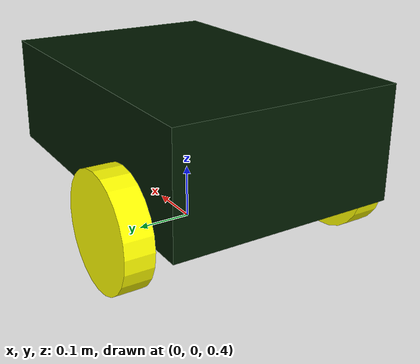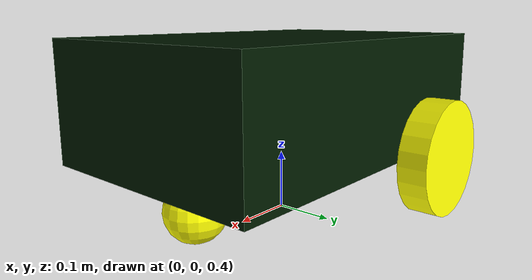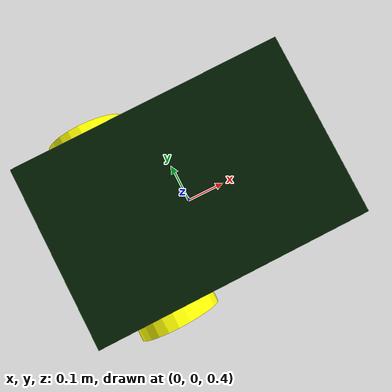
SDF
<?xml version="1.0" ?>
<!--USE THIS FILE, IF IT IS REQUIRED. URDF/XACRO FILE IS SUFFICIENT IN ORDER TO VISULAIZE IN GAZEBO-->
<!--CHECK THE PLACEMNET OF CAMERA AND LIDAR. THESE TWO ARE MISPLACED-->
<!--COLOR OF base_link IS MORE DARKER COMPARED TO IN RVIZ. ADJUST THE MATERIAL VALUES OF 'base_link'-->
<!--THE ROBOT IS SLIDING, WHEN APPLYING BRAKE. TRY TO MODIFY THAT AS WELL-->
<sdf version="1.8">
    <model name ="dd_robot">

      <pose>0 0 0.5 0 0 0</pose>
      <link name ="base_footprint"/>

      <link name ="base_link">
        <inertial>
            <pose>0.0 0.0 0.10 0.0 0.0 0.0</pose>
            <inertia>
                <ixx>0.0833333</ixx>
                <ixy>0.0</ixy>
                <ixz>0.0</ixz>
                <iyy>0.1666667</iyy>
                <iyz>0.0</iyz>
                <izz>0.2166667</izz>
            </inertia>
            <mass>5.0</mass>
        </inertial>

        <collision name ="base_collision">
            <pose>0.0 0.0 0.105 0.0 0.0 0.0</pose>
            <geometry>
                <box>
                    <size>0.60 0.40 0.20</size>
                </box>
            </geometry>
            <surface>
                <friction>
                    <ode>
                        <mu>1.0</mu>
                        <mu2>1.0</mu2>
                    </ode>
                </friction>
                <contact>
                    <ode>
                        <soft_cfm>1e-9</soft_cfm>
                        <soft_erp>0.2</soft_erp>
                        <kp>2e6</kp>
                        <kd>50</kd>
                        <max_vel>0.2</max_vel>
                        <min_depth>0.001</min_depth>
                    </ode>
                </contact>
                <bullet>
                    <split_impulse>1</split_impulse>
                    <split_impulse_penetration_threshold>-0.01</split_impulse_penetration_threshold>
                    <soft_cfm>0.0</soft_cfm>
                    <soft_erp>0.2</soft_erp>
                    <kp>2e6</kp>
                    <kd>50</kd>
                </bullet>
            </surface>
        </collision>
        <visual name ="base_visual">
            <pose>0.0 0.0 0.105 0.0 0.0 0.0</pose>
            <geometry>
                <box>
                    <size>0.60 0.40 0.20</size>
                </box>
            </geometry>
            <material>
                <ambient>0.0 0.6 0.0 1.0</ambient>
                <diffuse> 0.0 0.1 0.0 1.0</diffuse>
            </material>
        </visual>
      </link>

      <link name="right_wheel_link">
        <pose>-0.15 -0.225 0 0.0 0.0 0.0</pose>
        <inertial>
            <pose>0.0 0.0 0.0 0.0 0.0 0.0</pose>
            <inertia>
                <ixx>0.002708</ixx>
                <ixy>0.0</ixy>
                <ixz>0.0</ixz>
                <iyy>0.002708</iyy>
                <iyz>0.0</iyz>
                <izz>0.005000</izz>
            </inertia>
            <mass>1.0</mass>
        </inertial>
        <collision name ="right_wheel_collision">
            <pose>0.0 0.0 0.0 1.5708 0.0 0.0</pose>
            <geometry>
                <cylinder>
                    <radius>0.1</radius>
                    <length>0.05</length>
                </cylinder>
            </geometry>
            <surface>
                <friction>
                    <ode>
                        <mu>0.1</mu>
                        <mu2>3.0</mu2>
                        <fdir1>0 0 0</fdir1>
                        <slip1>0.0</slip1>
                        <slip2>0.0</slip2>
                    </ode>
                </friction>
                <contact>
                    <ode>
                        <soft_cfm>0</soft_cfm>
                        <soft_erp>0.2</soft_erp>
                        <kp>1e+5</kp>
                        <kd>1</kd>
                        <max_vel>0.01</max_vel>
                        <min_depth>0.001</min_depth>
                    </ode>
                </contact>
                <bullet>
                    <split_impulse>1</split_impulse>
                    <split_impulse_penetration_threshold>-0.01</split_impulse_penetration_threshold>
                    <soft_cfm>0.0</soft_cfm>
                    <soft_erp>0.2</soft_erp>
                    <kp>2e6</kp>
                    <kd>50</kd>
                </bullet>
            </surface>
        </collision>
        <visual name ="right_wheel_visual">
            <pose>0.0 0.0 0.0 1.5708 0.0 0.0</pose>
            <geometry>
                <cylinder>
                    <radius>0.1</radius>
                    <length>0.05</length>
                </cylinder>
            </geometry>
            <material>
                <ambient>1.0 1.0 0.0 1.0</ambient>
                <diffuse>1.0 1.0 0.0 1.0</diffuse>
            </material>
        </visual>
      </link>

      <link name="left_wheel_link">
        <pose>-0.15 0.225 0.0 0.0 0.0 0.0</pose>
        <inertial>
            <pose>0.0 0.0 0.0 0.0 0.0 0.0</pose>
            <inertia>
                <ixx>0.002708</ixx>
                <ixy>0.0</ixy>
                <ixz>0.0</ixz>
                <iyy>0.002708</iyy>
                <iyz>0.0</iyz>
                <izz>0.005000</izz>
            </inertia>
            <mass>1.0</mass>
        </inertial>
        <collision name ="left_wheel_collision">
            <pose>0.0 0.0 0.0 1.5708 0.0 0.0</pose>
            <geometry>
                <cylinder>
                    <radius>0.1</radius>
                    <length>0.05</length>
                </cylinder>
            </geometry>
            <surface>
                <friction>
                    <ode>
                        <mu>0.1</mu>
                        <mu2>3.0</mu2>
                        <fdir1>0 0 0</fdir1>
                        <slip1>0.0</slip1>
                        <slip2>0.0</slip2>
                    </ode>
                </friction>
                <contact>
                    <ode>
                        <soft_cfm>0</soft_cfm>
                        <soft_erp>0.2</soft_erp>
                        <kp>1e+5</kp>
                        <kd>1</kd>
                        <max_vel>0.01</max_vel>
                        <min_depth>0.001</min_depth>

                    </ode>
                </contact>
                <bullet>
                    <split_impulse>1</split_impulse>
                    <split_impulse_penetration_threshold>-0.01</split_impulse_penetration_threshold>
                    <soft_cfm>0.0</soft_cfm>
                    <soft_erp>0.2</soft_erp>
                    <kp>2e6</kp>
                    <kd>50</kd>
                </bullet>
            </surface>
        </collision>
        <visual name ="left_wheel_visual">
            <pose>0.0 0.0 0.0 1.5708 0.0 0.0</pose>
            <geometry>
                <cylinder>
                    <radius>0.1</radius>
                    <length>0.05</length>
                </cylinder>
            </geometry>
            <material>
                <ambient>1.0 1.0 0.0 1.0</ambient>
                <diffuse>1.0 1.0 0.0 1.0</diffuse>
            </material>
        </visual>
      </link>

      <link name ="caster_wheel_link">
        <pose>0.20 0.0 -0.05 0.0 0.0 0.0 </pose>
        <inertial>
            <mass>0.5</mass>
            <inertia>
                <ixx>0.0005</ixx>
                <ixy>0.0</ixy>
                <ixz>0.0</ixz>
                <iyy>0.0005</iyy>
                <iyz>0.0</iyz>
                <izz>0.0005</izz>
            </inertia>
        </inertial>
        <collision name ="caster_wheel_collision">
            <geometry>
                <sphere>
                    <radius>0.0500</radius>
                </sphere>
            </geometry>
            <surface>
                <friction>
                    <ode>
                        <mu>0.000002</mu>
                        <mu2>0.000002</mu2>
                        <fdir1>0 0 0</fdir1>
                        <slip1>0.0</slip1>
                        <slip2>0.0</slip2>
                    </ode>
                </friction>
                <contact>
                    <ode>
                        <soft_cfm>0</soft_cfm>
                        <soft_erp>0.2</soft_erp>
                        <kp>1e+5</kp>
                        <kd>1</kd>
                        <max_vel>0.01</max_vel>
                        <min_depth>0.001</min_depth>
                    </ode>
                </contact>
                <bullet>
                    <split_impulse>1</split_impulse>
                    <split_impulse_penetration_threshold>-0.01</split_impulse_penetration_threshold>
                    <soft_cfm>0.0</soft_cfm>
                    <soft_erp>0.2</soft_erp>
                    <kp>2e6</kp>
                    <kd>50</kd>
                </bullet>
            </surface>
        </collision>
        <visual name ="caster_wheel_visual">
            <pose>0.0 0.0 0.0 0.0 0.0 0.0</pose>
            <geometry>
                <sphere>
                    <radius>0.0500</radius>
                </sphere>
            </geometry>
            <material>
                <ambient>1.0 1.0 0.0 1.0</ambient>
                <diffuse>1.0 1.0 0.0 1.0</diffuse>
            </material>
        </visual>
      </link>

      <!--IMU-->
      <link name="imu_link">
           <sensor type="imu" name="imu_sensor">
           <topic>/imu</topic>
           <gz_frame_id>imu_link</gz_frame_id>
           <always_on>1</always_on>
           <update_rate>250</update_rate>
           <visualize>true</visualize>
           <imu>
              <angular_velocity>
                 <x><noise type="gaussian"><mean>0.0</mean><stddev>0.0002</stddev></noise></x>
                 <y><noise type="gaussian"><mean>0.0</mean><stddev>0.0002</stddev></noise></y>
                 <z><noise type="gaussian"><mean>0.0</mean><stddev>0.0002</stddev></noise></z>
              </angular_velocity>
              <linear_acceleration>
                  <x><noise type="gaussian"><mean>0.0</mean><stddev>0.017</stddev></noise></x>
                  <y><noise type="gaussian"><mean>0.0</mean><stddev>0.017</stddev></noise></y>
                  <z><noise type="gaussian"><mean>0.0</mean><stddev>0.017</stddev></noise></z>
              </linear_acceleration>
           </imu>
              <plugin filename="gz-sim-imu-system" name="gz::sim::systems::Imu">
                <initial_orientation_as_reference>false</initial_orientation_as_reference>
              </plugin>
          </sensor>
        </link>
      <!--CAMERA-->
      <link name="camera_link">
        <inertial>
            <pose>0.0 0.0 0.0 0.0 0.0 0.0</pose>
            <inertia>
                <ixx>0.001</ixx>
                <ixy>0.0</ixy>
                <ixz>0.0</ixz>
                <iyy>0.001</iyy>
                <iyz>0.0</iyz>
                <izz>0.001</izz>
            </inertia>
            <mass>0.035</mass>
        </inertial>

        <pose>0.0 0.0 0.0 0.0 0.0 0.0</pose>
        <sensor name="depth_camera" type="rgbd_camera">
            <always_on>true</always_on>
            <visualize>true</visualize>
            <update_rate>20</update_rate>
            <topic>depth_camera</topic>
            <gz_frame_id>camera_link</gz_frame_id>
            <camera>
                <horizontal_fov>1.047198</horizontal_fov>
                <image>
                    <width>640</width>
                    <height>480</height>
                    <format>R8G8B8</format>
                </image>
                <clip>
                    <near>0.05</near>
                    <far>3</far>
                </clip>
            </camera>
        </sensor>
      </link>
      <!--LIDAR-->
      <link name="lidar_link">
        <inertial>
            <pose>0.2 0.0 0.45 0.0 0.0 0.0</pose>
            <inertia>
                <ixx>0.003333</ixx>
                <ixy>0.0</ixy>
                <ixz>0.0</ixz>
                <iyy>0.003333</iyy>
                <iyz>0.0</iyz>
                <izz>0.005000</izz>
            </inertia>
            <mass>1.0</mass>
        </inertial>
        <collision name="lidar_collision">
            <pose>0.0 0.0 0.0 0.0 0.0 0.0</pose>
            <geometry>
                <cylinder>
                    <radius>0.1</radius>
                    <length>0.05</length>
                </cylinder>
            </geometry>
        </collision>
        <visual name="lidar_visual">
            <pose>0.0 0.0 0.0 0.0 0.0 0.0</pose>
            <geometry>
                <cylinder>
                    <radius>0.1</radius>
                    <length>0.05
                    </length>
                </cylinder>
            </geometry>
            <material>
                    <ambient>1.0 1.0 0.0 1.0</ambient>
                    <diffuse>1.0 1.0 0.0 1.0</diffuse>
            </material>
        </visual>
        <sensor name="lidar" type="gpu_lidar">
           <always_on>1</always_on>
           <topic>lidar_points</topic>
           <visualize>true</visualize>
           <gz_frame_id>lidar_link</gz_frame_id>
           <update_rate>10.0</update_rate>
           <lidar>
               <scan>
                 <horizontal>
                   <samples>480</samples>
                   <resolution>1</resolution>
                   <min_angle>-3.14159265</min_angle>
                   <max_angle>3.14159265</max_angle>
                 </horizontal>
               </scan>
               <range>
                 <min>0.5</min>
                 <max>131.0</max>
                 <resolution>0.001</resolution>
               </range>
               <noise>
                 <type>gaussian</type>
                 <mean>0.0</mean>
                 <stddev>0.08</stddev>
               </noise>
               <frame_id>lidar_link</frame_id>
           </lidar>
        </sensor>
      </link>

      <!--BASE JOINT-->
      <joint name = "base_joint" type ="fixed">
        <parent>base_footprint</parent>
        <child>base_link</child>
        <pose>0.0 0.0 0.10 0.0 0.0 0.0</pose>
      </joint>
      <!--RIGHT WHEEL JOINT-->
      <joint name="right_wheel_joint" type="revolute">
        <parent>base_link</parent>
        <child>right_wheel_link</child>
        <pose>0 0 0 0 0 0</pose>
        <axis>
            <xyz>0 1 0</xyz>
            <limit>
                <effort>50000</effort>
                <velocity>10</velocity>
            </limit>
        </axis>

      </joint>
      <!--LEFT WHEEL JOINT-->
      <joint name="left_wheel_joint" type="revolute">
        <parent>base_link</parent>
        <child>left_wheel_link</child>
        <pose>0 0 0 0 0 0</pose>
        <axis>
            <xyz>0 1 0</xyz>
            <limit>
                <effort>50000</effort>
                <velocity>10</velocity>
            </limit>
        </axis>

      </joint>
      <!--CASTER WHEEL JOINT-->
      <joint name="base_caster_wheel_joint" type="fixed">
        <parent>base_link</parent>
        <child>caster_wheel_link</child>
        <pose>0 0 0 0 0 0</pose>
      </joint>
      <!--IMU-->
      <joint name="imu_joint" type="fixed">
       <parent>base_link</parent>
       <child>imu_link</child>
       <pose>0.0 0.0 0.10 0.0 0.0 0.0</pose>
      </joint>
      <!--CAMERA-->
      <link name="camera_depth_frame"/>
      <joint name="camera_joint" type="fixed">
        <parent>base_link</parent>
        <child>camera_link</child>
        <pose>0.30 0.0 0.10 0.0 0.0 0.0</pose>
      </joint>
      <joint name="camera_depth_joint" type="fixed">
         <parent>camera_link</parent>
         <child>camera_depth_frame</child>
         <pose>0.0 0.0 0.0 -1.57079632679 0 -1.57079632679</pose>
      </joint>
      <!--LIDAR-->
      <joint name="base_lidar_joint" type="fixed">
        <parent>base_link</parent>
        <child>lidar_link</child>
        <pose>0.15 0.0 0.225 0.0 0.0 0.0</pose>
      </joint>
      <!--PLUGINS-->
      <plugin
            filename="gz-sim-diff-drive-system" name="gz::sim::systems::DiffDrive">

            <left_joint>left_wheel_joint</left_joint>
            <right_joint>right_wheel_joint</right_joint>
            <wheel_separation>0.45</wheel_separation>
            <wheel_radius>0.1</wheel_radius>
            <odom_topic>odom</odom_topic>
            <frame_id>odom</frame_id>
            <child_frame_id>base_footprint</child_frame_id>
            <odom_publish_frequency>30.0</odom_publish_frequency>
            <publish_tf>true</publish_tf>
            <tf_topic>/tf</tf_topic>
      </plugin>

      <plugin
            filename="gz-sim-joint-state-publisher-system" name="gz::sim::systems::JointStatePublisher">

            <joint_name>right_wheel_joint</joint_name>
            <joint_name>left_wheel_joint</joint_name>
      </plugin>

      <plugin filename="gz-sim-sensors-system" name="gz::sim::systems::Sensors">
        <render_engine>ogre2</render_engine>
      </plugin>

    </model>

</sdf>
